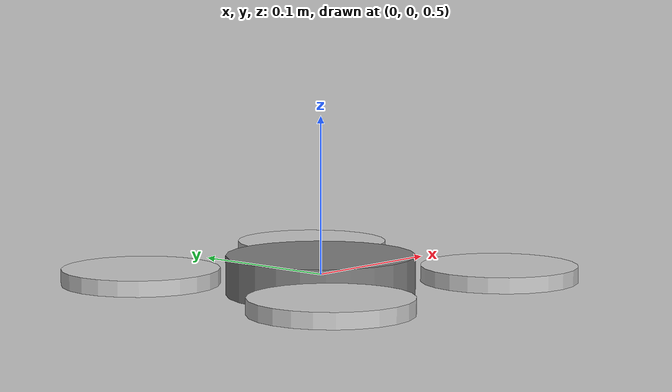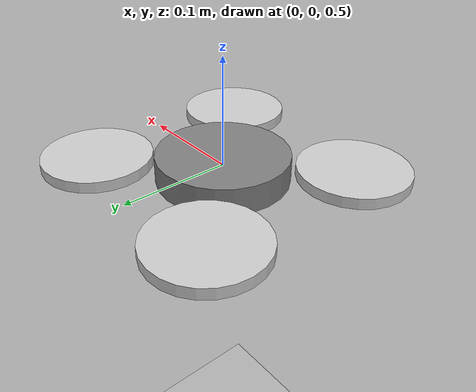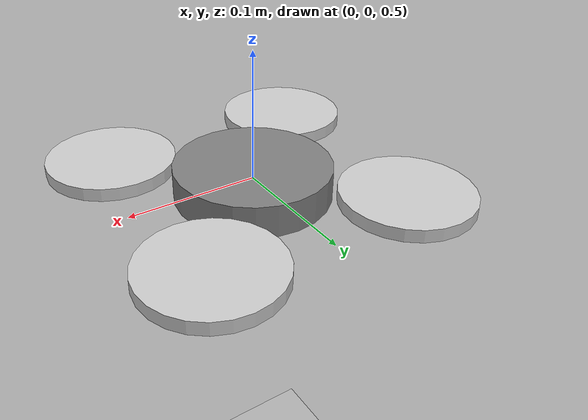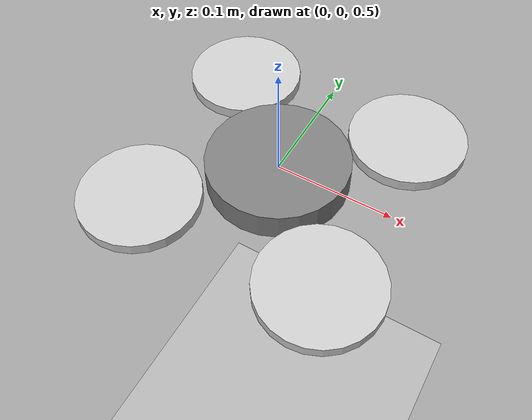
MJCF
<?xml version="1.0" encoding="utf-8"?>
<mujoco model="simple_drone">

  <!-- 编译器选项 -->
  <compiler meshdir="./" texturedir="./" />

  <!-- 默认选项 -->
  <default>
    <default class="drone_body">
      <geom type="cylinder" size="0.06 0.0125" rgba="0.5 0.5 0.5 1" />
    </default>
    <default class="propeller">
      <geom type="cylinder" size="0.05 0.005" rgba="0.8 0.8 0.8 1" />
    </default>
  </default>

  <!-- 世界体 -->
  <worldbody>
    <!-- 无人机主体 -->
    <body name="base_link" pos="0 0 0.5">
      <inertial pos="0 0 0" mass="0.027" diaginertia="1.4e-5 1.4e-5 2.17e-5" />
      <geom class="drone_body" pos="0 0 0" />

      <!-- 螺旋桨1 - 前左 -->
      <body name="prop0_link" pos="0.08 0.08 0">
        <inertial pos="0 0 0" mass="0.001" diaginertia="1e-6 1e-6 2e-6" />
        <geom class="propeller" pos="0 0 0" />
      </body>

      <!-- 螺旋桨2 - 前右 -->
      <body name="prop1_link" pos="-0.08 0.08 0">
        <inertial pos="0 0 0" mass="0.001" diaginertia="1e-6 1e-6 2e-6" />
        <geom class="propeller" pos="0 0 0" />
      </body>

      <!-- 螺旋桨3 - 后左 -->
      <body name="prop2_link" pos="-0.08 -0.08 0">
        <inertial pos="0 0 0" mass="0.001" diaginertia="1e-6 1e-6 2e-6" />
        <geom class="propeller" pos="0 0 0" />
      </body>

      <!-- 螺旋桨4 - 后右 -->
      <body name="prop3_link" pos="0.08 -0.08 0">
        <inertial pos="0 0 0" mass="0.001" diaginertia="1e-6 1e-6 2e-6" />
        <geom class="propeller" pos="0 0 0" />
      </body>
    </body>

    <!-- 地面 -->
    <geom name="ground" type="plane" pos="0 0 0" size="10 10 0.1" rgba="0.7 0.7 0.7 1" />
  </worldbody>

  <!-- 无人机动力学参数 - 使用properties标签来模拟URDF的properties -->
  <custom>
    <text name="drone_properties" data="kf=3.16e-10;km=7.94e-12;arm=0.0397;thrust2weight=2.25;max_speed_kmh=30;gnd_eff_coeff=11.36859;prop_radius=0.0231348;drag_coeff_xy=9.1785e-7;drag_coeff_z=1.0311e-6;dw_coeff_1=2267.18;dw_coeff_2=0.16;dw_coeff_3=-0.11" />
  </custom>

</mujoco>
